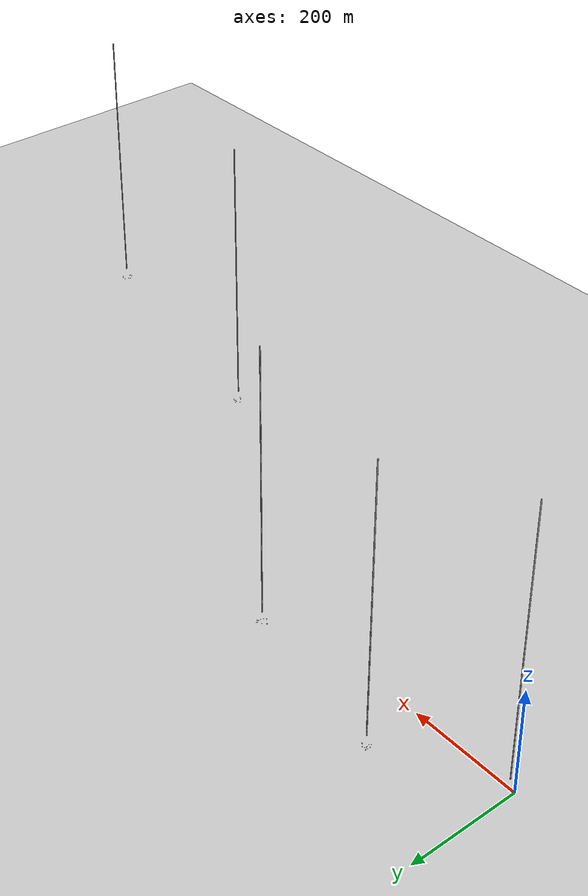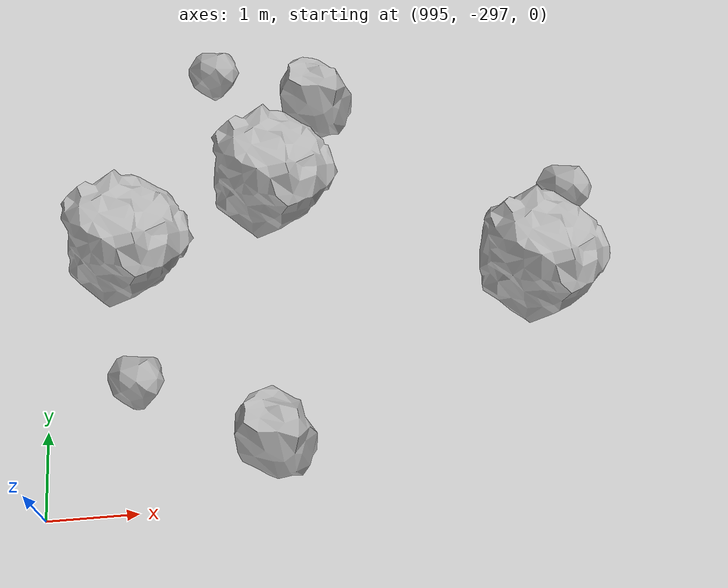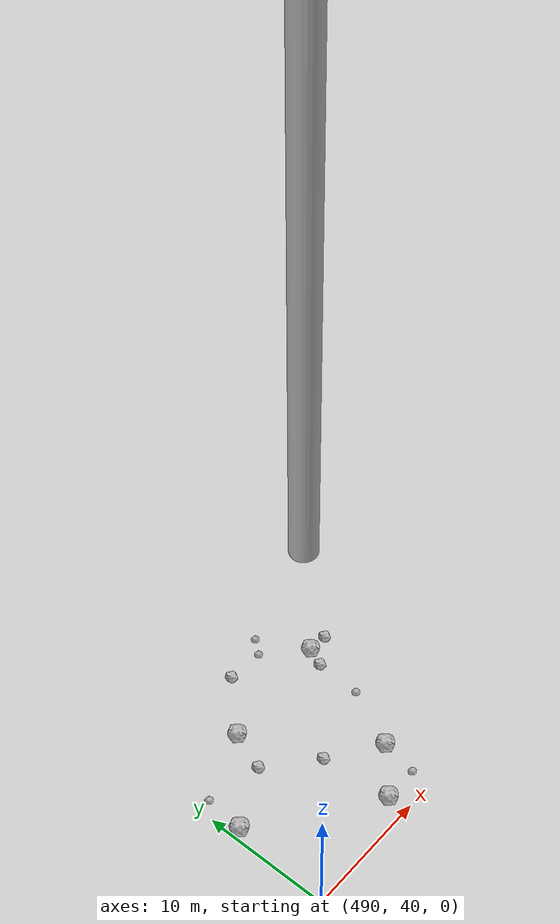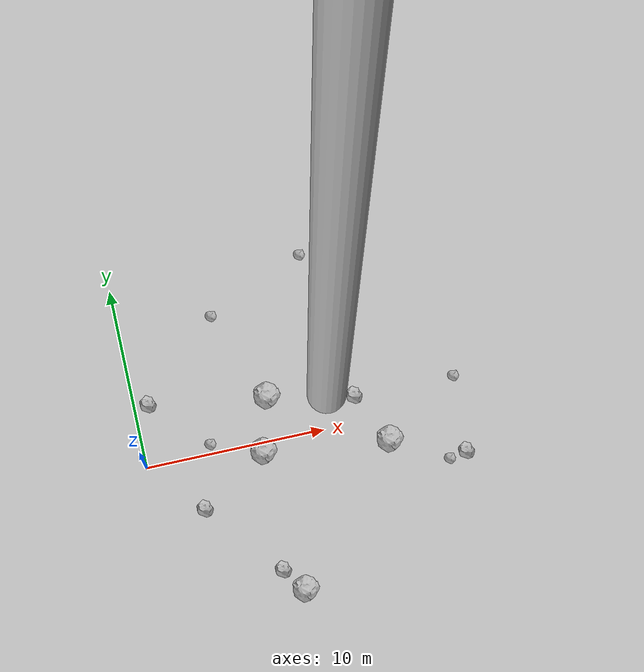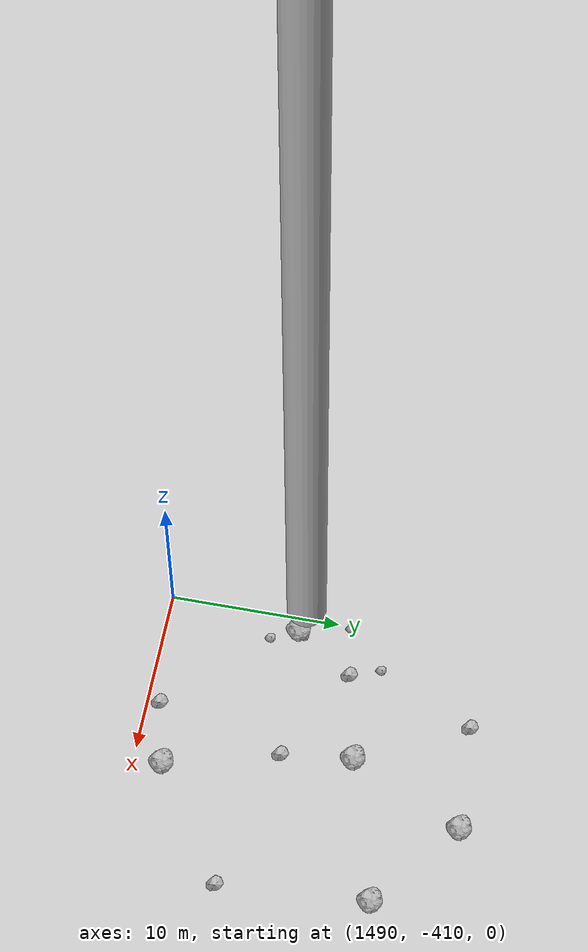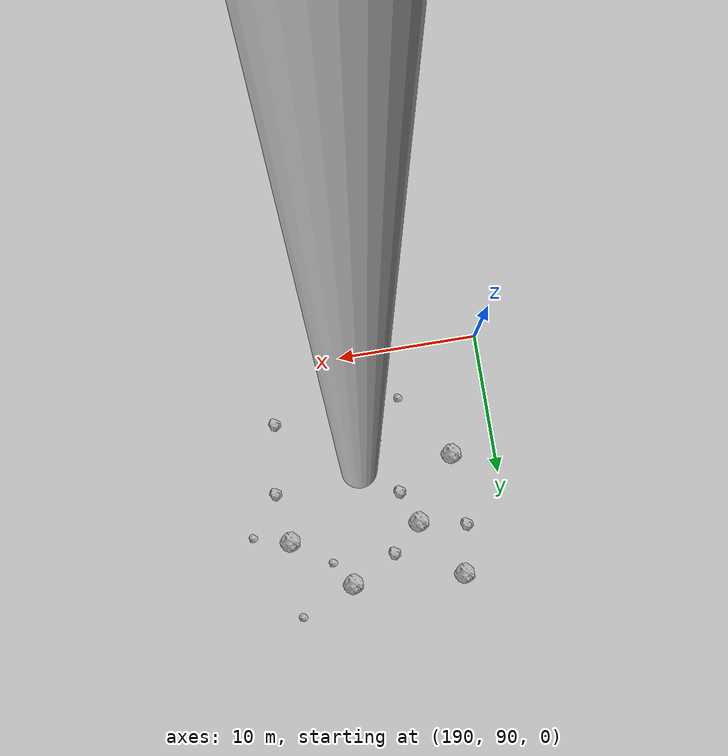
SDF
<?xml version="1.0" ?>
<sdf version="1.6">
  <world name="default">

    <include>
      <uri>model://custom_ground</uri>
    </include>

    <include>
      <uri>model://sun</uri>
    </include>

    <spherical_coordinates>
      <surface_model>EARTH_WGS84</surface_model>
      <latitude_deg>38.161479</latitude_deg>
      <longitude_deg>-122.454630</longitude_deg>
      <elevation>488.0</elevation>
      <heading_deg>90</heading_deg>
    </spherical_coordinates>

    <model name="rock1_0_0">
      <include>
        <uri>model://rock1</uri>
        <pose>13.446876084036832 -1.270095667885748 0.5 0 0 0</pose>
      </include>
    </model>
    <model name="rock1_0_1">
      <include>
        <uri>model://rock1</uri>
        <pose>7.314563351880907 2.506466727308613 0.5 0 0 0</pose>
      </include>
    </model>
    <model name="rock1_0_2">
      <include>
        <uri>model://rock1</uri>
        <pose>7.166499730557265 -8.359092069162468 0.5 0 0 0</pose>
      </include>
    </model>
    <model name="rock1_0_3">
      <include>
        <uri>model://rock1</uri>
        <pose>11.681467851560747 4.177065106081484 0.5 0 0 0</pose>
      </include>
    </model>
    <model name="rock1_0_4">
      <include>
        <uri>model://rock1</uri>
        <pose>6.498703885387213 -0.4623015378376998 0.5 0 0 0</pose>
      </include>
    </model>
    <model name="rock2_0_0">
      <include>
        <uri>model://rock2</uri>
        <pose>2.6626037348244824 -2.875282734310929 0.3 0 0 0</pose>
      </include>
    </model>
    <model name="rock2_0_1">
      <include>
        <uri>model://rock2</uri>
        <pose>17.426590673019547 -2.7820711019527984 0.3 0 0 0</pose>
      </include>
    </model>
    <model name="rock2_0_2">
      <include>
        <uri>model://rock2</uri>
        <pose>6.164259014179409 -7.065411514967083 0.3 0 0 0</pose>
      </include>
    </model>
    <model name="rock2_0_3">
      <include>
        <uri>model://rock2</uri>
        <pose>0.7898468205787657 3.4277803717924034 0.3 0 0 0</pose>
      </include>
    </model>
    <model name="rock2_0_4">
      <include>
        <uri>model://rock2</uri>
        <pose>12.024496411349258 1.5196108286164751 0.3 0 0 0</pose>
      </include>
    </model>
    <model name="rock3_0_0">
      <include>
        <uri>model://rock3</uri>
        <pose>16.43631498952006 -3.0264569112693085 0.2 0 0 0</pose>
      </include>
    </model>
    <model name="rock3_0_1">
      <include>
        <uri>model://rock3</uri>
        <pose>3.6837947107253144 0.523244339880387 0.2 0 0 0</pose>
      </include>
    </model>
    <model name="rock3_0_2">
      <include>
        <uri>model://rock3</uri>
        <pose>5.1984784915201026 7.469436071903438 0.2 0 0 0</pose>
      </include>
    </model>
    <model name="rock3_0_3">
      <include>
        <uri>model://rock3</uri>
        <pose>17.591141267251214 1.4103701744642336 0.2 0 0 0</pose>
      </include>
    </model>
    <model name="rock3_0_4">
      <include>
        <uri>model://rock3</uri>
        <pose>10.69641733547507 9.792933447978122 0.2 0 0 0</pose>
      </include>
    </model>
    <model name="rock1_1_0">
      <include>
        <uri>model://rock1</uri>
        <pose>193.16023552503546 98.19715752876171 0.5 0 0 0</pose>
      </include>
    </model>
    <model name="rock1_1_1">
      <include>
        <uri>model://rock1</uri>
        <pose>193.63641672729077 106.78144224636075 0.5 0 0 0</pose>
      </include>
    </model>
    <model name="rock1_1_2">
      <include>
        <uri>model://rock1</uri>
        <pose>201.5712688456224 106.28384292893287 0.5 0 0 0</pose>
      </include>
    </model>
    <model name="rock1_1_3">
      <include>
        <uri>model://rock1</uri>
        <pose>205.536840529028 102.606596659055 0.5 0 0 0</pose>
      </include>
    </model>
    <model name="rock1_1_4">
      <include>
        <uri>model://rock1</uri>
        <pose>196.2510600975186 102.64986225037374 0.5 0 0 0</pose>
      </include>
    </model>
    <model name="rock2_1_0">
      <include>
        <uri>model://rock2</uri>
        <pose>197.21494038003144 100.31675027689518 0.3 0 0 0</pose>
      </include>
    </model>
    <model name="rock2_1_1">
      <include>
        <uri>model://rock2</uri>
        <pose>205.3327259848012 94.09683250420521 0.3 0 0 0</pose>
      </include>
    </model>
    <model name="rock2_1_2">
      <include>
        <uri>model://rock2</uri>
        <pose>206.02985703708714 99.0630841448837 0.3 0 0 0</pose>
      </include>
    </model>
    <model name="rock2_1_3">
      <include>
        <uri>model://rock2</uri>
        <pose>192.86042165681212 103.356369324894 0.3 0 0 0</pose>
      </include>
    </model>
    <model name="rock2_1_4">
      <include>
        <uri>model://rock2</uri>
        <pose>198.2914690084105 104.59051131916313 0.3 0 0 0</pose>
      </include>
    </model>
    <model name="rock3_1_0">
      <include>
        <uri>model://rock3</uri>
        <pose>198.26412784450994 96.32538692055753 0.2 0 0 0</pose>
      </include>
    </model>
    <model name="rock3_1_1">
      <include>
        <uri>model://rock3</uri>
        <pose>208.0917591926713 101.89332140831965 0.2 0 0 0</pose>
      </include>
    </model>
    <model name="rock3_1_2">
      <include>
        <uri>model://rock3</uri>
        <pose>196.22937324509394 93.54118057995088 0.2 0 0 0</pose>
      </include>
    </model>
    <model name="rock3_1_3">
      <include>
        <uri>model://rock3</uri>
        <pose>202.71863283464677 104.53237500879355 0.2 0 0 0</pose>
      </include>
    </model>
    <model name="rock3_1_4">
      <include>
        <uri>model://rock3</uri>
        <pose>205.4274118274504 108.01499804829157 0.2 0 0 0</pose>
      </include>
    </model>
    <model name="rock1_2_0">
      <include>
        <uri>model://rock1</uri>
        <pose>506.06195718455234 54.28037670141333 0.5 0 0 0</pose>
      </include>
    </model>
    <model name="rock1_2_1">
      <include>
        <uri>model://rock1</uri>
        <pose>502.8557440632429 44.48858600436219 0.5 0 0 0</pose>
      </include>
    </model>
    <model name="rock1_2_2">
      <include>
        <uri>model://rock1</uri>
        <pose>499.4642296943455 41.544425820241344 0.5 0 0 0</pose>
      </include>
    </model>
    <model name="rock1_2_3">
      <include>
        <uri>model://rock1</uri>
        <pose>496.4985988090177 53.317139847301156 0.5 0 0 0</pose>
      </include>
    </model>
    <model name="rock1_2_4">
      <include>
        <uri>model://rock1</uri>
        <pose>490.7008599436422 47.95508948873846 0.5 0 0 0</pose>
      </include>
    </model>
    <model name="rock2_2_0">
      <include>
        <uri>model://rock2</uri>
        <pose>500.1398315281885 57.22603496475966 0.3 0 0 0</pose>
      </include>
    </model>
    <model name="rock2_2_1">
      <include>
        <uri>model://rock2</uri>
        <pose>507.70883577772406 54.30546462624812 0.3 0 0 0</pose>
      </include>
    </model>
    <model name="rock2_2_2">
      <include>
        <uri>model://rock2</uri>
        <pose>498.9677289549349 47.205582605392905 0.3 0 0 0</pose>
      </include>
    </model>
    <model name="rock2_2_3">
      <include>
        <uri>model://rock2</uri>
        <pose>505.40652910002075 52.86855075612507 0.3 0 0 0</pose>
      </include>
    </model>
    <model name="rock2_2_4">
      <include>
        <uri>model://rock2</uri>
        <pose>495.33719090483083 50.33420093672672 0.3 0 0 0</pose>
      </include>
    </model>
    <model name="rock3_2_0">
      <include>
        <uri>model://rock3</uri>
        <pose>505.15798182646677 49.12286400052058 0.2 0 0 0</pose>
      </include>
    </model>
    <model name="rock3_2_1">
      <include>
        <uri>model://rock3</uri>
        <pose>502.27707992622953 41.589182078515286 0.2 0 0 0</pose>
      </include>
    </model>
    <model name="rock3_2_2">
      <include>
        <uri>model://rock3</uri>
        <pose>490.98741170081445 51.16158852503287 0.2 0 0 0</pose>
      </include>
    </model>
    <model name="rock3_2_3">
      <include>
        <uri>model://rock3</uri>
        <pose>504.0623825093638 58.23782999266331 0.2 0 0 0</pose>
      </include>
    </model>
    <model name="rock3_2_4">
      <include>
        <uri>model://rock3</uri>
        <pose>503.1161688599958 57.075083128408444 0.2 0 0 0</pose>
      </include>
    </model>
    <model name="rock1_3_0">
      <include>
        <uri>model://rock1</uri>
        <pose>995.9741102262246 -293.8943309723459 0.5 0 0 0</pose>
      </include>
    </model>
    <model name="rock1_3_1">
      <include>
        <uri>model://rock1</uri>
        <pose>1000.732889633041 -294.49523062397765 0.5 0 0 0</pose>
      </include>
    </model>
    <model name="rock1_3_2">
      <include>
        <uri>model://rock1</uri>
        <pose>1004.7743528186077 -307.0992787542792 0.5 0 0 0</pose>
      </include>
    </model>
    <model name="rock1_3_3">
      <include>
        <uri>model://rock1</uri>
        <pose>999.9150841306259 -304.650604097174 0.5 0 0 0</pose>
      </include>
    </model>
    <model name="rock1_3_4">
      <include>
        <uri>model://rock1</uri>
        <pose>997.7077901489146 -293.1398413000121 0.5 0 0 0</pose>
      </include>
    </model>
    <model name="rock2_3_0">
      <include>
        <uri>model://rock2</uri>
        <pose>997.5227055696679 -296.2920207190692 0.3 0 0 0</pose>
      </include>
    </model>
    <model name="rock2_3_1">
      <include>
        <uri>model://rock2</uri>
        <pose>1007.2682531952214 -294.7053037933205 0.3 0 0 0</pose>
      </include>
    </model>
    <model name="rock2_3_2">
      <include>
        <uri>model://rock2</uri>
        <pose>1005.7363570745163 -301.4108739500174 0.3 0 0 0</pose>
      </include>
    </model>
    <model name="rock2_3_3">
      <include>
        <uri>model://rock2</uri>
        <pose>998.2813817249163 -291.9227945079628 0.3 0 0 0</pose>
      </include>
    </model>
    <model name="rock2_3_4">
      <include>
        <uri>model://rock2</uri>
        <pose>1003.8885341738169 -293.2675779999746 0.3 0 0 0</pose>
      </include>
    </model>
    <model name="rock3_3_0">
      <include>
        <uri>model://rock3</uri>
        <pose>1004.6331731527931 -298.02597570396597 0.2 0 0 0</pose>
      </include>
    </model>
    <model name="rock3_3_1">
      <include>
        <uri>model://rock3</uri>
        <pose>997.0088983389575 -291.42877636209437 0.2 0 0 0</pose>
      </include>
    </model>
    <model name="rock3_3_2">
      <include>
        <uri>model://rock3</uri>
        <pose>992.6422493107043 -297.7873733514909 0.2 0 0 0</pose>
      </include>
    </model>
    <model name="rock3_3_3">
      <include>
        <uri>model://rock3</uri>
        <pose>1001.1836731941265 -293.4726749527165 0.2 0 0 0</pose>
      </include>
    </model>
    <model name="rock3_3_4">
      <include>
        <uri>model://rock3</uri>
        <pose>995.9935298561422 -295.5476084452776 0.2 0 0 0</pose>
      </include>
    </model>
    <model name="rock1_4_0">
      <include>
        <uri>model://rock1</uri>
        <pose>1491.003735781457 -402.2385919800129 0.5 0 0 0</pose>
      </include>
    </model>
    <model name="rock1_4_1">
      <include>
        <uri>model://rock1</uri>
        <pose>1498.5877745451742 -397.62781627357384 0.5 0 0 0</pose>
      </include>
    </model>
    <model name="rock1_4_2">
      <include>
        <uri>model://rock1</uri>
        <pose>1506.9992804488163 -395.15280607453815 0.5 0 0 0</pose>
      </include>
    </model>
    <model name="rock1_4_3">
      <include>
        <uri>model://rock1</uri>
        <pose>1500.8453762416523 -408.3401241074368 0.5 0 0 0</pose>
      </include>
    </model>
    <model name="rock1_4_4">
      <include>
        <uri>model://rock1</uri>
        <pose>1501.760548179067 -390.97593535795806 0.5 0 0 0</pose>
      </include>
    </model>
    <model name="rock2_4_0">
      <include>
        <uri>model://rock2</uri>
        <pose>1507.4818625558792 -403.81157941283396 0.3 0 0 0</pose>
      </include>
    </model>
    <model name="rock2_4_1">
      <include>
        <uri>model://rock2</uri>
        <pose>1496.9890608228477 -409.2539809314961 0.3 0 0 0</pose>
      </include>
    </model>
    <model name="rock2_4_2">
      <include>
        <uri>model://rock2</uri>
        <pose>1498.9711538481863 -401.75592513214247 0.3 0 0 0</pose>
      </include>
    </model>
    <model name="rock2_4_3">
      <include>
        <uri>model://rock2</uri>
        <pose>1493.2532079961015 -398.77109301312896 0.3 0 0 0</pose>
      </include>
    </model>
    <model name="rock2_4_4">
      <include>
        <uri>model://rock2</uri>
        <pose>1495.3167901809225 -391.3368287992098 0.3 0 0 0</pose>
      </include>
    </model>
    <model name="rock3_4_0">
      <include>
        <uri>model://rock3</uri>
        <pose>1491.17194062816 -401.88600419564193 0.2 0 0 0</pose>
      </include>
    </model>
    <model name="rock3_4_1">
      <include>
        <uri>model://rock3</uri>
        <pose>1491.6504104769797 -403.80503251362757 0.2 0 0 0</pose>
      </include>
    </model>
    <model name="rock3_4_2">
      <include>
        <uri>model://rock3</uri>
        <pose>1492.5811620907145 -397.0437231774408 0.2 0 0 0</pose>
      </include>
    </model>
    <model name="rock3_4_3">
      <include>
        <uri>model://rock3</uri>
        <pose>1498.123449630631 -397.60235560317113 0.2 0 0 0</pose>
      </include>
    </model>
    <model name="rock3_4_4">
      <include>
        <uri>model://rock3</uri>
        <pose>1490.1806907439368 -399.2550393771415 0.2 0 0 0</pose>
      </include>
    </model>

    <model name="cylinder_1">
      <static>true</static>
      <link name="link">
        <visual name="visual">
          <geometry>
            <cylinder>
              <radius>1</radius>
              <length>500</length>
            </cylinder>
          </geometry>
        </visual>
      </link>
      <pose>10 0 270 0 0 0</pose>
    </model>

    <model name="cylinder_2">
      <static>true</static>
      <link name="link">
        <visual name="visual">
          <geometry>
            <cylinder>
              <radius>1</radius>
              <length>500</length>
            </cylinder>
          </geometry>
        </visual>
      </link>
      <pose>200 100 270 0 0 0</pose>
    </model>

    <model name="cylinder_3">
      <static>true</static>
      <link name="link">
        <visual name="visual">
          <geometry>
            <cylinder>
              <radius>1</radius>
              <length>500</length>
            </cylinder>
          </geometry>
        </visual>
      </link>
      <pose>500 50 270 0 0 0</pose>
    </model>

    <model name="cylinder_4">
      <static>true</static>
      <link name="link">
        <visual name="visual">
          <geometry>
            <cylinder>
              <radius>1</radius>
              <length>500</length>
            </cylinder>
          </geometry>
        </visual>
      </link>
      <pose>1000 -300 270 0 0 0</pose>
    </model>

    <model name="cylinder_5">
      <static>true</static>
      <link name="link">
        <visual name="visual">
          <geometry>
            <cylinder>
              <radius>1</radius>
              <length>500</length>
            </cylinder>
          </geometry>
        </visual>
      </link>
      <pose>1500 -400 270 0 0 0</pose>
    </model>

  </world>
</sdf>

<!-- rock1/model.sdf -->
<sdf version="1.6">
  <model name="rock1">
    <static>true</static> <!-- Set to true if the model should not move -->
    <pose>0 0 0 0 0 0</pose>

    <!--z offset is 0.5 for full scale-->

    <link name="link">
      <collision name="rock1_collision">
        <geometry>
          <mesh>
            <uri>model://meshes/rock1.dae</uri>
          </mesh>
        </geometry>
      </collision>
      <visual name="rock1_visual">
        <geometry>
          <mesh>
            <uri>model://meshes/rock1.dae</uri>
          </mesh>
        </geometry>
        <material>
          <script>
            <uri>model://materials/scripts/sand_pebbles.material</uri>
            <name>custom_ground/Image</name>
          </script>
        </material>
      </visual>
    </link>
  </model>
</sdf>

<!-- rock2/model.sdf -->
<sdf version="1.6">
  <model name="rock2">
    <static>true</static> <!-- Set to true if the model should not move -->
    <pose>0 0 0 0 0 0</pose>

    <!--z offset is 0.3 for full scale-->

    <link name="link">
      <collision name="rock2_collision">
        <geometry>
          <mesh>
            <uri>model://meshes/rock2.dae</uri>
          </mesh>
        </geometry>
      </collision>
      <visual name="rock2_visual">
        <geometry>
          <mesh>
            <uri>model://meshes/rock2.dae</uri>
          </mesh>
        </geometry>
        <material>
          <script>
            <uri>model://materials/scripts/sand_pebbles.material</uri>
            <name>custom_ground/Image</name>
          </script>
        </material>
      </visual>
    </link>
  </model>
</sdf>

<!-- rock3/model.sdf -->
<sdf version="1.6">
  <model name="rock3">
    <static>true</static> <!-- Set to true if the model should not move -->
    <pose>0 0 0 0 0 0</pose>

    <!--z offset is 0.2 for full scale-->

    <link name="link">
      <collision name="rock3_collision">
        <geometry>
          <mesh>
            <uri>model://meshes/rock3.dae</uri>
          </mesh>
        </geometry>
      </collision>
      <visual name="rock3_visual">
        <geometry>
          <mesh>
            <uri>model://meshes/rock3.dae</uri>
          </mesh>
        </geometry>
        <material>
          <script>
            <uri>model://materials/scripts/sand_pebbles.material</uri>
            <name>custom_ground/Image</name>
          </script>
        </material>
      </visual>
    </link>
  </model>
</sdf>

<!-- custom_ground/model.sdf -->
<sdf version="1.6">
  <model name="custom_ground">
    <static>true</static> <!-- Ground is static and immovable -->
    <link name="ground_link">
      <pose>240 0 0 0 0 0</pose> <!-- Position and orientation relative to the world -->
      <!-- Visual Representation -->
      <visual name="ground_visual">
        <geometry>
          <plane>
            <normal>0 0 1</normal> <!-- Upward facing plane -->
            <size>500 500</size> <!-- Size of the plane -->
          </plane>
        </geometry>
        <material>
          <script>
            <uri>model://materials/scripts/sand_pebbles.material</uri>
            <name>custom_ground/Image</name>
          </script>
        </material>
      </visual>

      <!-- Collision Representation -->
      <collision name="ground_collision">
        <geometry>
          <plane>
            <normal>0 0 1</normal>
            <size>100 100</size>
          </plane>
        </geometry>
      </collision>

    </link>
  </model>
</sdf>
